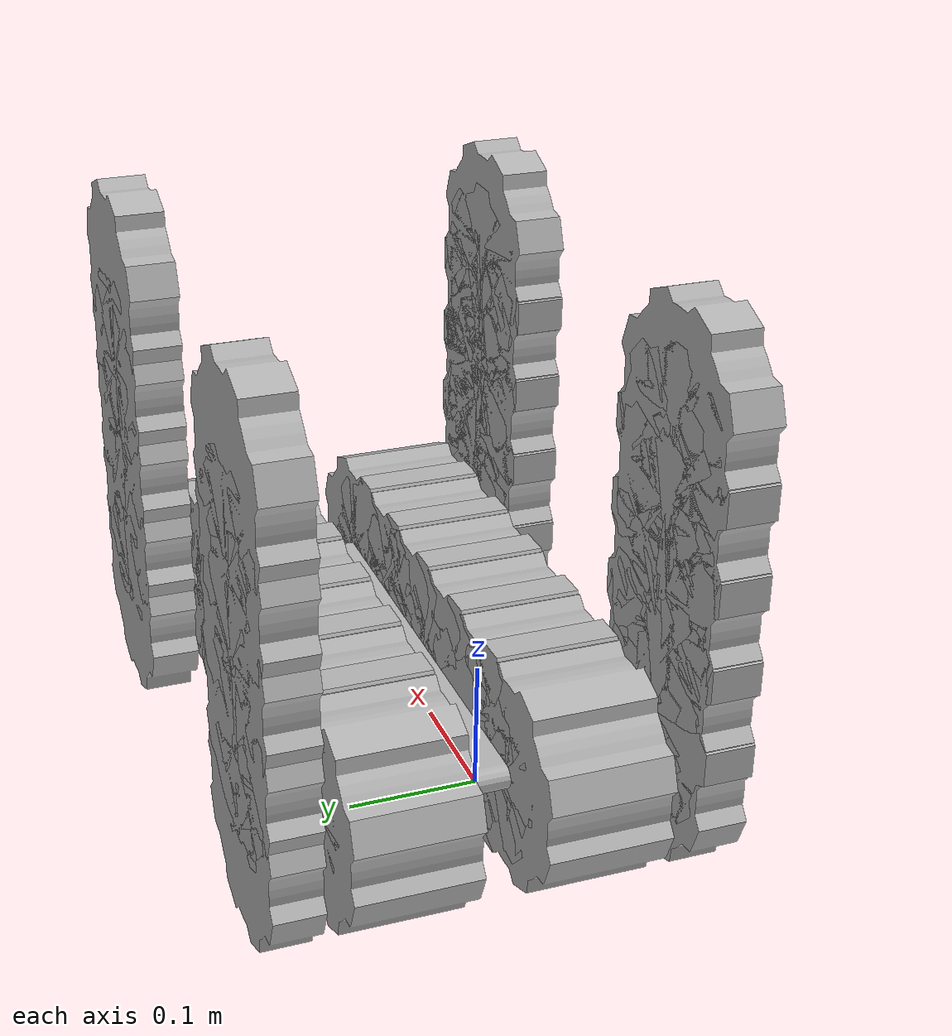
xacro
<?xml version="1.0" ?>
<robot name="easy_j1" xmlns:xacro="http://www.ros.org/wiki/xacro">

<xacro:include filename="$(find easy_j1_description)/urdf/materials.xacro" />
<xacro:include filename="$(find easy_j1_description)/urdf/easy_j1.trans" />
<xacro:include filename="$(find easy_j1_description)/urdf/easy_j1.gazebo" />
<link name="base_link">
  <inertial>
    <origin xyz="0.18824000000000002 8.395296854792174e-17 4.197648427396087e-18" rpy="0 0 0"/>
    <mass value="1.0833383470577025"/>
    <inertia ixx="0.004576" iyy="0.014873" izz="0.019388" ixy="0.0" iyz="0.0" ixz="0.0"/>
  </inertial>
  <visual>
    <origin xyz="0 0 0" rpy="0 0 0"/>
    <geometry>
      <mesh filename="package://easy_j1_description/meshes/base_link.stl" scale="0.001 0.001 0.001"/>
    </geometry>
    <material name="silver"/>
  </visual>
  <collision>
    <origin xyz="0 0 0" rpy="0 0 0"/>
    <geometry>
      <mesh filename="package://easy_j1_description/meshes/base_link.stl" scale="0.001 0.001 0.001"/>
    </geometry>
  </collision>
</link>

<link name="gear_ou_1">
  <inertial>
    <origin xyz="1.911870673115013e-06 0.04999999999999999 -1.711881432260235e-05" rpy="0 0 0"/>
    <mass value="2.261142306483083"/>
    <inertia ixx="0.006104" iyy="0.008446" izz="0.006111" ixy="0.0" iyz="-0.0" ixz="-4e-06"/>
  </inertial>
  <visual>
    <origin xyz="-0.0 0.125 -0.0" rpy="0 0 0"/>
    <geometry>
      <mesh filename="package://easy_j1_description/meshes/gear_ou_1.stl" scale="0.001 0.001 0.001"/>
    </geometry>
    <material name="silver"/>
  </visual>
  <collision>
    <origin xyz="-0.0 0.125 -0.0" rpy="0 0 0"/>
    <geometry>
      <mesh filename="package://easy_j1_description/meshes/gear_ou_1.stl" scale="0.001 0.001 0.001"/>
    </geometry>
  </collision>
</link>

<link name="gear_ou_2">
  <inertial>
    <origin xyz="1.9118706731241497e-06 0.04999999999999999 -1.711881432260235e-05" rpy="0 0 0"/>
    <mass value="2.261142306483083"/>
    <inertia ixx="0.006104" iyy="0.008446" izz="0.006111" ixy="0.0" iyz="-0.0" ixz="-4e-06"/>
  </inertial>
  <visual>
    <origin xyz="-0.075296 0.125 -0.0" rpy="0 0 0"/>
    <geometry>
      <mesh filename="package://easy_j1_description/meshes/gear_ou_2.stl" scale="0.001 0.001 0.001"/>
    </geometry>
    <material name="silver"/>
  </visual>
  <collision>
    <origin xyz="-0.075296 0.125 -0.0" rpy="0 0 0"/>
    <geometry>
      <mesh filename="package://easy_j1_description/meshes/gear_ou_2.stl" scale="0.001 0.001 0.001"/>
    </geometry>
  </collision>
</link>

<link name="gear_ou_3">
  <inertial>
    <origin xyz="1.9118706731380275e-06 0.04999999999999999 -1.711881432260235e-05" rpy="0 0 0"/>
    <mass value="2.261142306483083"/>
    <inertia ixx="0.006104" iyy="0.008446" izz="0.006111" ixy="0.0" iyz="-0.0" ixz="-4e-06"/>
  </inertial>
  <visual>
    <origin xyz="-0.150592 0.125 -0.0" rpy="0 0 0"/>
    <geometry>
      <mesh filename="package://easy_j1_description/meshes/gear_ou_3.stl" scale="0.001 0.001 0.001"/>
    </geometry>
    <material name="silver"/>
  </visual>
  <collision>
    <origin xyz="-0.150592 0.125 -0.0" rpy="0 0 0"/>
    <geometry>
      <mesh filename="package://easy_j1_description/meshes/gear_ou_3.stl" scale="0.001 0.001 0.001"/>
    </geometry>
  </collision>
</link>

<link name="gear_ou_5">
  <inertial>
    <origin xyz="1.9118706731380275e-06 0.04999999999999999 -1.711881432260235e-05" rpy="0 0 0"/>
    <mass value="2.261142306483083"/>
    <inertia ixx="0.006104" iyy="0.008446" izz="0.006111" ixy="-0.0" iyz="-0.0" ixz="-4e-06"/>
  </inertial>
  <visual>
    <origin xyz="-0.225888 0.125 -0.0" rpy="0 0 0"/>
    <geometry>
      <mesh filename="package://easy_j1_description/meshes/gear_ou_5.stl" scale="0.001 0.001 0.001"/>
    </geometry>
    <material name="silver"/>
  </visual>
  <collision>
    <origin xyz="-0.225888 0.125 -0.0" rpy="0 0 0"/>
    <geometry>
      <mesh filename="package://easy_j1_description/meshes/gear_ou_5.stl" scale="0.001 0.001 0.001"/>
    </geometry>
  </collision>
</link>

<link name="gear_ou_4">
  <inertial>
    <origin xyz="1.9118706732212942e-06 0.04999999999999999 -1.711881432260235e-05" rpy="0 0 0"/>
    <mass value="2.261142306483083"/>
    <inertia ixx="0.006104" iyy="0.008446" izz="0.006111" ixy="-0.0" iyz="-0.0" ixz="-4e-06"/>
  </inertial>
  <visual>
    <origin xyz="-0.301184 0.125 -0.0" rpy="0 0 0"/>
    <geometry>
      <mesh filename="package://easy_j1_description/meshes/gear_ou_4.stl" scale="0.001 0.001 0.001"/>
    </geometry>
    <material name="silver"/>
  </visual>
  <collision>
    <origin xyz="-0.301184 0.125 -0.0" rpy="0 0 0"/>
    <geometry>
      <mesh filename="package://easy_j1_description/meshes/gear_ou_4.stl" scale="0.001 0.001 0.001"/>
    </geometry>
  </collision>
</link>

<link name="gear_ou_6">
  <inertial>
    <origin xyz="1.911870673110272e-06 0.04999999999999999 -1.7118814322600126e-05" rpy="0 0 0"/>
    <mass value="2.261142306483083"/>
    <inertia ixx="0.006104" iyy="0.008446" izz="0.006111" ixy="0.0" iyz="-0.0" ixz="-4e-06"/>
  </inertial>
  <visual>
    <origin xyz="-0.37648 0.125 -0.0" rpy="0 0 0"/>
    <geometry>
      <mesh filename="package://easy_j1_description/meshes/gear_ou_6.stl" scale="0.001 0.001 0.001"/>
    </geometry>
    <material name="silver"/>
  </visual>
  <collision>
    <origin xyz="-0.37648 0.125 -0.0" rpy="0 0 0"/>
    <geometry>
      <mesh filename="package://easy_j1_description/meshes/gear_ou_6.stl" scale="0.001 0.001 0.001"/>
    </geometry>
  </collision>
</link>

<link name="gear_totu_1">
  <inertial>
    <origin xyz="8.025821132975897e-06 0.05 -1.524123513452956e-05" rpy="0 0 0"/>
    <mass value="2.261142306483082"/>
    <inertia ixx="0.006107" iyy="0.008446" izz="0.006107" ixy="0.0" iyz="0.0" ixz="-5e-06"/>
  </inertial>
  <visual>
    <origin xyz="-0.037648 0.125 -0.0" rpy="0 0 0"/>
    <geometry>
      <mesh filename="package://easy_j1_description/meshes/gear_totu_1.stl" scale="0.001 0.001 0.001"/>
    </geometry>
    <material name="silver"/>
  </visual>
  <collision>
    <origin xyz="-0.037648 0.125 -0.0" rpy="0 0 0"/>
    <geometry>
      <mesh filename="package://easy_j1_description/meshes/gear_totu_1.stl" scale="0.001 0.001 0.001"/>
    </geometry>
  </collision>
</link>

<link name="gear_totu_2">
  <inertial>
    <origin xyz="8.025821132975897e-06 0.05 -1.524123513452956e-05" rpy="0 0 0"/>
    <mass value="2.261142306483082"/>
    <inertia ixx="0.006107" iyy="0.008446" izz="0.006107" ixy="0.0" iyz="0.0" ixz="-5e-06"/>
  </inertial>
  <visual>
    <origin xyz="-0.112944 0.125 -0.0" rpy="0 0 0"/>
    <geometry>
      <mesh filename="package://easy_j1_description/meshes/gear_totu_2.stl" scale="0.001 0.001 0.001"/>
    </geometry>
    <material name="silver"/>
  </visual>
  <collision>
    <origin xyz="-0.112944 0.125 -0.0" rpy="0 0 0"/>
    <geometry>
      <mesh filename="package://easy_j1_description/meshes/gear_totu_2.stl" scale="0.001 0.001 0.001"/>
    </geometry>
  </collision>
</link>

<link name="gear_totu_4">
  <inertial>
    <origin xyz="8.025821132962019e-06 0.05 -1.524123513452956e-05" rpy="0 0 0"/>
    <mass value="2.261142306483082"/>
    <inertia ixx="0.006107" iyy="0.008446" izz="0.006107" ixy="-0.0" iyz="0.0" ixz="-5e-06"/>
  </inertial>
  <visual>
    <origin xyz="-0.18824 0.125 -0.0" rpy="0 0 0"/>
    <geometry>
      <mesh filename="package://easy_j1_description/meshes/gear_totu_4.stl" scale="0.001 0.001 0.001"/>
    </geometry>
    <material name="silver"/>
  </visual>
  <collision>
    <origin xyz="-0.18824 0.125 -0.0" rpy="0 0 0"/>
    <geometry>
      <mesh filename="package://easy_j1_description/meshes/gear_totu_4.stl" scale="0.001 0.001 0.001"/>
    </geometry>
  </collision>
</link>

<link name="gear_totu_5">
  <inertial>
    <origin xyz="8.02582113301753e-06 0.05 -1.524123513452956e-05" rpy="0 0 0"/>
    <mass value="2.261142306483082"/>
    <inertia ixx="0.006107" iyy="0.008446" izz="0.006107" ixy="-0.0" iyz="0.0" ixz="-5e-06"/>
  </inertial>
  <visual>
    <origin xyz="-0.263536 0.125 -0.0" rpy="0 0 0"/>
    <geometry>
      <mesh filename="package://easy_j1_description/meshes/gear_totu_5.stl" scale="0.001 0.001 0.001"/>
    </geometry>
    <material name="silver"/>
  </visual>
  <collision>
    <origin xyz="-0.263536 0.125 -0.0" rpy="0 0 0"/>
    <geometry>
      <mesh filename="package://easy_j1_description/meshes/gear_totu_5.stl" scale="0.001 0.001 0.001"/>
    </geometry>
  </collision>
</link>

<link name="gear_totu_3">
  <inertial>
    <origin xyz="8.02582113301753e-06 0.05 -1.524123513452956e-05" rpy="0 0 0"/>
    <mass value="2.261142306483082"/>
    <inertia ixx="0.006107" iyy="0.008446" izz="0.006107" ixy="-0.0" iyz="0.0" ixz="-5e-06"/>
  </inertial>
  <visual>
    <origin xyz="-0.338832 0.125 -0.0" rpy="0 0 0"/>
    <geometry>
      <mesh filename="package://easy_j1_description/meshes/gear_totu_3.stl" scale="0.001 0.001 0.001"/>
    </geometry>
    <material name="silver"/>
  </visual>
  <collision>
    <origin xyz="-0.338832 0.125 -0.0" rpy="0 0 0"/>
    <geometry>
      <mesh filename="package://easy_j1_description/meshes/gear_totu_3.stl" scale="0.001 0.001 0.001"/>
    </geometry>
  </collision>
</link>

<link name="cgear_ou_1">
  <inertial>
    <origin xyz="1.9118706728093203e-06 -0.04999999999999999 -1.711881432260096e-05" rpy="0 0 0"/>
    <mass value="2.261142306483083"/>
    <inertia ixx="0.006104" iyy="0.008446" izz="0.006111" ixy="0.0" iyz="-0.0" ixz="-4e-06"/>
  </inertial>
  <visual>
    <origin xyz="-0.0 -0.125 -0.0" rpy="0 0 0"/>
    <geometry>
      <mesh filename="package://easy_j1_description/meshes/cgear_ou_1.stl" scale="0.001 0.001 0.001"/>
    </geometry>
    <material name="silver"/>
  </visual>
  <collision>
    <origin xyz="-0.0 -0.125 -0.0" rpy="0 0 0"/>
    <geometry>
      <mesh filename="package://easy_j1_description/meshes/cgear_ou_1.stl" scale="0.001 0.001 0.001"/>
    </geometry>
  </collision>
</link>

<link name="cgear_ou_2">
  <inertial>
    <origin xyz="1.9118706728188384e-06 -0.04999999999999999 -1.711881432260096e-05" rpy="0 0 0"/>
    <mass value="2.261142306483083"/>
    <inertia ixx="0.006104" iyy="0.008446" izz="0.006111" ixy="0.0" iyz="-0.0" ixz="-4e-06"/>
  </inertial>
  <visual>
    <origin xyz="-0.075296 -0.125 -0.0" rpy="0 0 0"/>
    <geometry>
      <mesh filename="package://easy_j1_description/meshes/cgear_ou_2.stl" scale="0.001 0.001 0.001"/>
    </geometry>
    <material name="silver"/>
  </visual>
  <collision>
    <origin xyz="-0.075296 -0.125 -0.0" rpy="0 0 0"/>
    <geometry>
      <mesh filename="package://easy_j1_description/meshes/cgear_ou_2.stl" scale="0.001 0.001 0.001"/>
    </geometry>
  </collision>
</link>

<link name="cgear_ou_3">
  <inertial>
    <origin xyz="1.911870672832716e-06 -0.04999999999999999 -1.711881432259874e-05" rpy="0 0 0"/>
    <mass value="2.261142306483083"/>
    <inertia ixx="0.006104" iyy="0.008446" izz="0.006111" ixy="0.0" iyz="-0.0" ixz="-4e-06"/>
  </inertial>
  <visual>
    <origin xyz="-0.37648 -0.125 -0.0" rpy="0 0 0"/>
    <geometry>
      <mesh filename="package://easy_j1_description/meshes/cgear_ou_3.stl" scale="0.001 0.001 0.001"/>
    </geometry>
    <material name="silver"/>
  </visual>
  <collision>
    <origin xyz="-0.37648 -0.125 -0.0" rpy="0 0 0"/>
    <geometry>
      <mesh filename="package://easy_j1_description/meshes/cgear_ou_3.stl" scale="0.001 0.001 0.001"/>
    </geometry>
  </collision>
</link>

<link name="cgear_ou_4">
  <inertial>
    <origin xyz="1.911870672777205e-06 -0.04999999999999999 -1.711881432260096e-05" rpy="0 0 0"/>
    <mass value="2.261142306483083"/>
    <inertia ixx="0.006104" iyy="0.008446" izz="0.006111" ixy="0.0" iyz="-0.0" ixz="-4e-06"/>
  </inertial>
  <visual>
    <origin xyz="-0.301184 -0.125 -0.0" rpy="0 0 0"/>
    <geometry>
      <mesh filename="package://easy_j1_description/meshes/cgear_ou_4.stl" scale="0.001 0.001 0.001"/>
    </geometry>
    <material name="silver"/>
  </visual>
  <collision>
    <origin xyz="-0.301184 -0.125 -0.0" rpy="0 0 0"/>
    <geometry>
      <mesh filename="package://easy_j1_description/meshes/cgear_ou_4.stl" scale="0.001 0.001 0.001"/>
    </geometry>
  </collision>
</link>

<link name="cgear_ou_5">
  <inertial>
    <origin xyz="1.911870672832716e-06 -0.04999999999999999 -1.711881432260096e-05" rpy="0 0 0"/>
    <mass value="2.261142306483083"/>
    <inertia ixx="0.006104" iyy="0.008446" izz="0.006111" ixy="0.0" iyz="-0.0" ixz="-4e-06"/>
  </inertial>
  <visual>
    <origin xyz="-0.225888 -0.125 -0.0" rpy="0 0 0"/>
    <geometry>
      <mesh filename="package://easy_j1_description/meshes/cgear_ou_5.stl" scale="0.001 0.001 0.001"/>
    </geometry>
    <material name="silver"/>
  </visual>
  <collision>
    <origin xyz="-0.225888 -0.125 -0.0" rpy="0 0 0"/>
    <geometry>
      <mesh filename="package://easy_j1_description/meshes/cgear_ou_5.stl" scale="0.001 0.001 0.001"/>
    </geometry>
  </collision>
</link>

<link name="cgear_ou_6">
  <inertial>
    <origin xyz="1.911870672832716e-06 -0.04999999999999999 -1.711881432260096e-05" rpy="0 0 0"/>
    <mass value="2.261142306483083"/>
    <inertia ixx="0.006104" iyy="0.008446" izz="0.006111" ixy="0.0" iyz="-0.0" ixz="-4e-06"/>
  </inertial>
  <visual>
    <origin xyz="-0.150592 -0.125 -0.0" rpy="0 0 0"/>
    <geometry>
      <mesh filename="package://easy_j1_description/meshes/cgear_ou_6.stl" scale="0.001 0.001 0.001"/>
    </geometry>
    <material name="silver"/>
  </visual>
  <collision>
    <origin xyz="-0.150592 -0.125 -0.0" rpy="0 0 0"/>
    <geometry>
      <mesh filename="package://easy_j1_description/meshes/cgear_ou_6.stl" scale="0.001 0.001 0.001"/>
    </geometry>
  </collision>
</link>

<link name="cgear_totu_1">
  <inertial>
    <origin xyz="8.025821132587319e-06 -0.05 -1.5241235134527131e-05" rpy="0 0 0"/>
    <mass value="2.2611423064830816"/>
    <inertia ixx="0.006107" iyy="0.008446" izz="0.006107" ixy="0.0" iyz="-0.0" ixz="-5e-06"/>
  </inertial>
  <visual>
    <origin xyz="-0.037648 -0.125 -0.0" rpy="0 0 0"/>
    <geometry>
      <mesh filename="package://easy_j1_description/meshes/cgear_totu_1.stl" scale="0.001 0.001 0.001"/>
    </geometry>
    <material name="silver"/>
  </visual>
  <collision>
    <origin xyz="-0.037648 -0.125 -0.0" rpy="0 0 0"/>
    <geometry>
      <mesh filename="package://easy_j1_description/meshes/cgear_totu_1.stl" scale="0.001 0.001 0.001"/>
    </geometry>
  </collision>
</link>

<link name="cgear_totu_2">
  <inertial>
    <origin xyz="8.025821132587319e-06 -0.04999999999999974 -1.5241235134527114e-05" rpy="0 0 0"/>
    <mass value="2.2611423064830816"/>
    <inertia ixx="0.006107" iyy="0.008446" izz="0.006107" ixy="0.0" iyz="-0.0" ixz="-5e-06"/>
  </inertial>
  <visual>
    <origin xyz="-0.112944 -0.125 -0.0" rpy="0 0 0"/>
    <geometry>
      <mesh filename="package://easy_j1_description/meshes/cgear_totu_2.stl" scale="0.001 0.001 0.001"/>
    </geometry>
    <material name="silver"/>
  </visual>
  <collision>
    <origin xyz="-0.112944 -0.125 -0.0" rpy="0 0 0"/>
    <geometry>
      <mesh filename="package://easy_j1_description/meshes/cgear_totu_2.stl" scale="0.001 0.001 0.001"/>
    </geometry>
  </collision>
</link>

<link name="cgear_totu_3">
  <inertial>
    <origin xyz="8.02582113257344e-06 -0.04999999999999996 -1.5241235134527131e-05" rpy="0 0 0"/>
    <mass value="2.2611423064830816"/>
    <inertia ixx="0.006107" iyy="0.008446" izz="0.006107" ixy="0.0" iyz="-0.0" ixz="-5e-06"/>
  </inertial>
  <visual>
    <origin xyz="-0.18824 -0.125 -0.0" rpy="0 0 0"/>
    <geometry>
      <mesh filename="package://easy_j1_description/meshes/cgear_totu_3.stl" scale="0.001 0.001 0.001"/>
    </geometry>
    <material name="silver"/>
  </visual>
  <collision>
    <origin xyz="-0.18824 -0.125 -0.0" rpy="0 0 0"/>
    <geometry>
      <mesh filename="package://easy_j1_description/meshes/cgear_totu_3.stl" scale="0.001 0.001 0.001"/>
    </geometry>
  </collision>
</link>

<link name="cgear_totu_4">
  <inertial>
    <origin xyz="8.02582113257344e-06 -0.04999999999999996 -1.5241235134527131e-05" rpy="0 0 0"/>
    <mass value="2.2611423064830816"/>
    <inertia ixx="0.006107" iyy="0.008446" izz="0.006107" ixy="0.0" iyz="-0.0" ixz="-5e-06"/>
  </inertial>
  <visual>
    <origin xyz="-0.263536 -0.125 -0.0" rpy="0 0 0"/>
    <geometry>
      <mesh filename="package://easy_j1_description/meshes/cgear_totu_4.stl" scale="0.001 0.001 0.001"/>
    </geometry>
    <material name="silver"/>
  </visual>
  <collision>
    <origin xyz="-0.263536 -0.125 -0.0" rpy="0 0 0"/>
    <geometry>
      <mesh filename="package://easy_j1_description/meshes/cgear_totu_4.stl" scale="0.001 0.001 0.001"/>
    </geometry>
  </collision>
</link>

<link name="cgear_totu_5">
  <inertial>
    <origin xyz="8.02582113257344e-06 -0.04999999999999996 -1.5241235134527131e-05" rpy="0 0 0"/>
    <mass value="2.2611423064830816"/>
    <inertia ixx="0.006107" iyy="0.008446" izz="0.006107" ixy="-0.0" iyz="-0.0" ixz="-5e-06"/>
  </inertial>
  <visual>
    <origin xyz="-0.338832 -0.125 -0.0" rpy="0 0 0"/>
    <geometry>
      <mesh filename="package://easy_j1_description/meshes/cgear_totu_5.stl" scale="0.001 0.001 0.001"/>
    </geometry>
    <material name="silver"/>
  </visual>
  <collision>
    <origin xyz="-0.338832 -0.125 -0.0" rpy="0 0 0"/>
    <geometry>
      <mesh filename="package://easy_j1_description/meshes/cgear_totu_5.stl" scale="0.001 0.001 0.001"/>
    </geometry>
  </collision>
</link>

<link name="rl_2">
  <inertial>
    <origin xyz="-8.282263763703668e-14 -0.039094849608622556 0.13820053564095713" rpy="0 0 0"/>
    <mass value="0.052061944901923785"/>
    <inertia ixx="0.000425" iyy="0.00042" izz="6e-06" ixy="-0.0" iyz="7e-06" ixz="0.0"/>
  </inertial>
  <visual>
    <origin xyz="-0.37648 0.125 -0.0" rpy="0 0 0"/>
    <geometry>
      <mesh filename="package://easy_j1_description/meshes/rl_2.stl" scale="0.001 0.001 0.001"/>
    </geometry>
    <material name="silver"/>
  </visual>
  <collision>
    <origin xyz="-0.37648 0.125 -0.0" rpy="0 0 0"/>
    <geometry>
      <mesh filename="package://easy_j1_description/meshes/rl_2.stl" scale="0.001 0.001 0.001"/>
    </geometry>
  </collision>
</link>

<link name="rl_1">
  <inertial>
    <origin xyz="-8.281962889398128e-14 -0.039094849608622556 0.1382005356409572" rpy="0 0 0"/>
    <mass value="0.052061944901923785"/>
    <inertia ixx="0.000425" iyy="0.00042" izz="6e-06" ixy="-0.0" iyz="7e-06" ixz="0.0"/>
  </inertial>
  <visual>
    <origin xyz="-0.0 0.125 -0.0" rpy="0 0 0"/>
    <geometry>
      <mesh filename="package://easy_j1_description/meshes/rl_1.stl" scale="0.001 0.001 0.001"/>
    </geometry>
    <material name="silver"/>
  </visual>
  <collision>
    <origin xyz="-0.0 0.125 -0.0" rpy="0 0 0"/>
    <geometry>
      <mesh filename="package://easy_j1_description/meshes/rl_1.stl" scale="0.001 0.001 0.001"/>
    </geometry>
  </collision>
</link>

<link name="rl_4">
  <inertial>
    <origin xyz="8.582742061152131e-14 0.039094849608622556 0.13820053564095708" rpy="0 0 0"/>
    <mass value="0.052061944901923785"/>
    <inertia ixx="0.000425" iyy="0.00042" izz="6e-06" ixy="-0.0" iyz="-7e-06" ixz="-0.0"/>
  </inertial>
  <visual>
    <origin xyz="-0.0 -0.125 -0.0" rpy="0 0 0"/>
    <geometry>
      <mesh filename="package://easy_j1_description/meshes/rl_4.stl" scale="0.001 0.001 0.001"/>
    </geometry>
    <material name="silver"/>
  </visual>
  <collision>
    <origin xyz="-0.0 -0.125 -0.0" rpy="0 0 0"/>
    <geometry>
      <mesh filename="package://easy_j1_description/meshes/rl_4.stl" scale="0.001 0.001 0.001"/>
    </geometry>
  </collision>
</link>

<link name="rl_3">
  <inertial>
    <origin xyz="8.609779555968089e-14 0.03909484960862261 0.13820053564095713" rpy="0 0 0"/>
    <mass value="0.052061944901923785"/>
    <inertia ixx="0.000425" iyy="0.00042" izz="6e-06" ixy="-0.0" iyz="-7e-06" ixz="-0.0"/>
  </inertial>
  <visual>
    <origin xyz="-0.37648 -0.125 -0.0" rpy="0 0 0"/>
    <geometry>
      <mesh filename="package://easy_j1_description/meshes/rl_3.stl" scale="0.001 0.001 0.001"/>
    </geometry>
    <material name="silver"/>
  </visual>
  <collision>
    <origin xyz="-0.37648 -0.125 -0.0" rpy="0 0 0"/>
    <geometry>
      <mesh filename="package://easy_j1_description/meshes/rl_3.stl" scale="0.001 0.001 0.001"/>
    </geometry>
  </collision>
</link>

<link name="gear_flat_f_1">
  <inertial>
    <origin xyz="1.946496241067748e-06 -0.020000000000000046 -1.7114911697742212e-05" rpy="0 0 0"/>
    <mass value="0.9044569225918019"/>
    <inertia ixx="0.001809" iyy="0.003379" izz="0.001811" ixy="-0.0" iyz="0.0" ixz="-1e-06"/>
  </inertial>
  <visual>
    <origin xyz="-0.0 -0.185 0.0" rpy="0 0 0"/>
    <geometry>
      <mesh filename="package://easy_j1_description/meshes/gear_flat_f_1.stl" scale="0.001 0.001 0.001"/>
    </geometry>
    <material name="silver"/>
  </visual>
  <collision>
    <origin xyz="-0.0 -0.185 0.0" rpy="0 0 0"/>
    <geometry>
      <mesh filename="package://easy_j1_description/meshes/gear_flat_f_1.stl" scale="0.001 0.001 0.001"/>
    </geometry>
  </collision>
</link>

<link name="gear_flat_f_2">
  <inertial>
    <origin xyz="1.946496241064053e-06 -0.020000000000000046 -1.711491169778534e-05" rpy="0 0 0"/>
    <mass value="0.9044569225918019"/>
    <inertia ixx="0.001809" iyy="0.003379" izz="0.001811" ixy="-0.0" iyz="0.0" ixz="-1e-06"/>
  </inertial>
  <visual>
    <origin xyz="-0.0 -0.185 -0.07125" rpy="0 0 0"/>
    <geometry>
      <mesh filename="package://easy_j1_description/meshes/gear_flat_f_2.stl" scale="0.001 0.001 0.001"/>
    </geometry>
    <material name="silver"/>
  </visual>
  <collision>
    <origin xyz="-0.0 -0.185 -0.07125" rpy="0 0 0"/>
    <geometry>
      <mesh filename="package://easy_j1_description/meshes/gear_flat_f_2.stl" scale="0.001 0.001 0.001"/>
    </geometry>
  </collision>
</link>

<link name="gear_flat_f_3">
  <inertial>
    <origin xyz="1.946496241028526e-06 -0.020000000000000046 -1.711491169784085e-05" rpy="0 0 0"/>
    <mass value="0.9044569225918019"/>
    <inertia ixx="0.001809" iyy="0.003379" izz="0.001811" ixy="-0.0" iyz="0.0" ixz="-1e-06"/>
  </inertial>
  <visual>
    <origin xyz="-0.0 -0.185 -0.1425" rpy="0 0 0"/>
    <geometry>
      <mesh filename="package://easy_j1_description/meshes/gear_flat_f_3.stl" scale="0.001 0.001 0.001"/>
    </geometry>
    <material name="silver"/>
  </visual>
  <collision>
    <origin xyz="-0.0 -0.185 -0.1425" rpy="0 0 0"/>
    <geometry>
      <mesh filename="package://easy_j1_description/meshes/gear_flat_f_3.stl" scale="0.001 0.001 0.001"/>
    </geometry>
  </collision>
</link>

<link name="gear_flat_f_6">
  <inertial>
    <origin xyz="1.9464962410374077e-06 -0.020000000000000046 -1.7114911697924118e-05" rpy="0 0 0"/>
    <mass value="0.9044569225918019"/>
    <inertia ixx="0.001809" iyy="0.003379" izz="0.001811" ixy="-0.0" iyz="0.0" ixz="-1e-06"/>
  </inertial>
  <visual>
    <origin xyz="-0.0 -0.185 -0.21375" rpy="0 0 0"/>
    <geometry>
      <mesh filename="package://easy_j1_description/meshes/gear_flat_f_6.stl" scale="0.001 0.001 0.001"/>
    </geometry>
    <material name="silver"/>
  </visual>
  <collision>
    <origin xyz="-0.0 -0.185 -0.21375" rpy="0 0 0"/>
    <geometry>
      <mesh filename="package://easy_j1_description/meshes/gear_flat_f_6.stl" scale="0.001 0.001 0.001"/>
    </geometry>
  </collision>
</link>

<link name="gear_flat_f_7">
  <inertial>
    <origin xyz="1.9464962410328976e-06 -0.020000000000000046 -1.711491169797963e-05" rpy="0 0 0"/>
    <mass value="0.9044569225918019"/>
    <inertia ixx="0.001809" iyy="0.003379" izz="0.001811" ixy="-0.0" iyz="0.0" ixz="-1e-06"/>
  </inertial>
  <visual>
    <origin xyz="-0.0 -0.185 -0.285" rpy="0 0 0"/>
    <geometry>
      <mesh filename="package://easy_j1_description/meshes/gear_flat_f_7.stl" scale="0.001 0.001 0.001"/>
    </geometry>
    <material name="silver"/>
  </visual>
  <collision>
    <origin xyz="-0.0 -0.185 -0.285" rpy="0 0 0"/>
    <geometry>
      <mesh filename="package://easy_j1_description/meshes/gear_flat_f_7.stl" scale="0.001 0.001 0.001"/>
    </geometry>
  </collision>
</link>

<link name="gear_flat_f_11">
  <inertial>
    <origin xyz="1.9464962416337883e-06 -0.01999999999999988 -1.711491169773998e-05" rpy="0 0 0"/>
    <mass value="0.9044569225918019"/>
    <inertia ixx="0.001809" iyy="0.003379" izz="0.001811" ixy="0.0" iyz="0.0" ixz="-1e-06"/>
  </inertial>
  <visual>
    <origin xyz="-0.37648 -0.185 -0.0" rpy="0 0 0"/>
    <geometry>
      <mesh filename="package://easy_j1_description/meshes/gear_flat_f_11.stl" scale="0.001 0.001 0.001"/>
    </geometry>
    <material name="silver"/>
  </visual>
  <collision>
    <origin xyz="-0.37648 -0.185 -0.0" rpy="0 0 0"/>
    <geometry>
      <mesh filename="package://easy_j1_description/meshes/gear_flat_f_11.stl" scale="0.001 0.001 0.001"/>
    </geometry>
  </collision>
</link>

<link name="gear_flat_f_10">
  <inertial>
    <origin xyz="1.9464962416337883e-06 -0.01999999999999988 -1.7114911697771462e-05" rpy="0 0 0"/>
    <mass value="0.9044569225918019"/>
    <inertia ixx="0.001809" iyy="0.003379" izz="0.001811" ixy="0.0" iyz="0.0" ixz="-1e-06"/>
  </inertial>
  <visual>
    <origin xyz="-0.37648 -0.185 -0.07125" rpy="0 0 0"/>
    <geometry>
      <mesh filename="package://easy_j1_description/meshes/gear_flat_f_10.stl" scale="0.001 0.001 0.001"/>
    </geometry>
    <material name="silver"/>
  </visual>
  <collision>
    <origin xyz="-0.37648 -0.185 -0.07125" rpy="0 0 0"/>
    <geometry>
      <mesh filename="package://easy_j1_description/meshes/gear_flat_f_10.stl" scale="0.001 0.001 0.001"/>
    </geometry>
  </collision>
</link>

<link name="gear_flat_f_9">
  <inertial>
    <origin xyz="1.9464962416337883e-06 -0.01999999999999988 -1.711491169784085e-05" rpy="0 0 0"/>
    <mass value="0.9044569225918019"/>
    <inertia ixx="0.001809" iyy="0.003379" izz="0.001811" ixy="0.0" iyz="0.0" ixz="-1e-06"/>
  </inertial>
  <visual>
    <origin xyz="-0.37648 -0.185 -0.1425" rpy="0 0 0"/>
    <geometry>
      <mesh filename="package://easy_j1_description/meshes/gear_flat_f_9.stl" scale="0.001 0.001 0.001"/>
    </geometry>
    <material name="silver"/>
  </visual>
  <collision>
    <origin xyz="-0.37648 -0.185 -0.1425" rpy="0 0 0"/>
    <geometry>
      <mesh filename="package://easy_j1_description/meshes/gear_flat_f_9.stl" scale="0.001 0.001 0.001"/>
    </geometry>
  </collision>
</link>

<link name="gear_flat_f_8">
  <inertial>
    <origin xyz="1.9464962414117437e-06 -0.01999999999999988 -1.7114911697868607e-05" rpy="0 0 0"/>
    <mass value="0.9044569225918019"/>
    <inertia ixx="0.001809" iyy="0.003379" izz="0.001811" ixy="0.0" iyz="0.0" ixz="-1e-06"/>
  </inertial>
  <visual>
    <origin xyz="-0.37648 -0.185 -0.21375" rpy="0 0 0"/>
    <geometry>
      <mesh filename="package://easy_j1_description/meshes/gear_flat_f_8.stl" scale="0.001 0.001 0.001"/>
    </geometry>
    <material name="silver"/>
  </visual>
  <collision>
    <origin xyz="-0.37648 -0.185 -0.21375" rpy="0 0 0"/>
    <geometry>
      <mesh filename="package://easy_j1_description/meshes/gear_flat_f_8.stl" scale="0.001 0.001 0.001"/>
    </geometry>
  </collision>
</link>

<link name="gear_flat_f_5">
  <inertial>
    <origin xyz="1.946496241189699e-06 -0.01999999999999988 -1.7114911697868607e-05" rpy="0 0 0"/>
    <mass value="0.9044569225918019"/>
    <inertia ixx="0.001809" iyy="0.003379" izz="0.001811" ixy="0.0" iyz="0.0" ixz="-1e-06"/>
  </inertial>
  <visual>
    <origin xyz="-0.37648 -0.185 -0.285" rpy="0 0 0"/>
    <geometry>
      <mesh filename="package://easy_j1_description/meshes/gear_flat_f_5.stl" scale="0.001 0.001 0.001"/>
    </geometry>
    <material name="silver"/>
  </visual>
  <collision>
    <origin xyz="-0.37648 -0.185 -0.285" rpy="0 0 0"/>
    <geometry>
      <mesh filename="package://easy_j1_description/meshes/gear_flat_f_5.stl" scale="0.001 0.001 0.001"/>
    </geometry>
  </collision>
</link>

<link name="gear_flat_f_19">
  <inertial>
    <origin xyz="-1.9464962368022713e-06 0.01999999999999999 -1.711491169774221e-05" rpy="0 0 0"/>
    <mass value="0.9044569225918019"/>
    <inertia ixx="0.001809" iyy="0.003379" izz="0.001811" ixy="-0.0" iyz="-0.0" ixz="1e-06"/>
  </inertial>
  <visual>
    <origin xyz="-0.0 0.185 -0.0" rpy="0 0 0"/>
    <geometry>
      <mesh filename="package://easy_j1_description/meshes/gear_flat_f_19.stl" scale="0.001 0.001 0.001"/>
    </geometry>
    <material name="silver"/>
  </visual>
  <collision>
    <origin xyz="-0.0 0.185 -0.0" rpy="0 0 0"/>
    <geometry>
      <mesh filename="package://easy_j1_description/meshes/gear_flat_f_19.stl" scale="0.001 0.001 0.001"/>
    </geometry>
  </collision>
</link>

<link name="gear_flat_f_18">
  <inertial>
    <origin xyz="-1.946496236805359e-06 0.019999999999999934 -1.711491169772983e-05" rpy="0 0 0"/>
    <mass value="0.9044569225918019"/>
    <inertia ixx="0.001809" iyy="0.003379" izz="0.001811" ixy="-0.0" iyz="0.0" ixz="1e-06"/>
  </inertial>
  <visual>
    <origin xyz="0.0 0.185 -0.07125" rpy="0 0 0"/>
    <geometry>
      <mesh filename="package://easy_j1_description/meshes/gear_flat_f_18.stl" scale="0.001 0.001 0.001"/>
    </geometry>
    <material name="silver"/>
  </visual>
  <collision>
    <origin xyz="0.0 0.185 -0.07125" rpy="0 0 0"/>
    <geometry>
      <mesh filename="package://easy_j1_description/meshes/gear_flat_f_18.stl" scale="0.001 0.001 0.001"/>
    </geometry>
  </collision>
</link>

<link name="gear_flat_f_17">
  <inertial>
    <origin xyz="-1.946496236803503e-06 0.01999999999999999 -1.711491169772983e-05" rpy="0 0 0"/>
    <mass value="0.9044569225918019"/>
    <inertia ixx="0.001809" iyy="0.003379" izz="0.001811" ixy="-0.0" iyz="-0.0" ixz="1e-06"/>
  </inertial>
  <visual>
    <origin xyz="0.0 0.185 -0.1425" rpy="0 0 0"/>
    <geometry>
      <mesh filename="package://easy_j1_description/meshes/gear_flat_f_17.stl" scale="0.001 0.001 0.001"/>
    </geometry>
    <material name="silver"/>
  </visual>
  <collision>
    <origin xyz="0.0 0.185 -0.1425" rpy="0 0 0"/>
    <geometry>
      <mesh filename="package://easy_j1_description/meshes/gear_flat_f_17.stl" scale="0.001 0.001 0.001"/>
    </geometry>
  </collision>
</link>

<link name="gear_flat_f_16">
  <inertial>
    <origin xyz="-1.9464962368530988e-06 0.01999999999999999 -1.711491169778534e-05" rpy="0 0 0"/>
    <mass value="0.9044569225918019"/>
    <inertia ixx="0.001809" iyy="0.003379" izz="0.001811" ixy="-0.0" iyz="0.0" ixz="1e-06"/>
  </inertial>
  <visual>
    <origin xyz="0.0 0.185 -0.21375" rpy="0 0 0"/>
    <geometry>
      <mesh filename="package://easy_j1_description/meshes/gear_flat_f_16.stl" scale="0.001 0.001 0.001"/>
    </geometry>
    <material name="silver"/>
  </visual>
  <collision>
    <origin xyz="0.0 0.185 -0.21375" rpy="0 0 0"/>
    <geometry>
      <mesh filename="package://easy_j1_description/meshes/gear_flat_f_16.stl" scale="0.001 0.001 0.001"/>
    </geometry>
  </collision>
</link>

<link name="gear_flat_f_15">
  <inertial>
    <origin xyz="-1.9464962368022713e-06 0.019999999999999934 -1.7114911697702073e-05" rpy="0 0 0"/>
    <mass value="0.9044569225918019"/>
    <inertia ixx="0.001809" iyy="0.003379" izz="0.001811" ixy="-0.0" iyz="-0.0" ixz="1e-06"/>
  </inertial>
  <visual>
    <origin xyz="-0.0 0.185 -0.285" rpy="0 0 0"/>
    <geometry>
      <mesh filename="package://easy_j1_description/meshes/gear_flat_f_15.stl" scale="0.001 0.001 0.001"/>
    </geometry>
    <material name="silver"/>
  </visual>
  <collision>
    <origin xyz="-0.0 0.185 -0.285" rpy="0 0 0"/>
    <geometry>
      <mesh filename="package://easy_j1_description/meshes/gear_flat_f_15.stl" scale="0.001 0.001 0.001"/>
    </geometry>
  </collision>
</link>

<link name="gear_flat_f_13">
  <inertial>
    <origin xyz="-1.946496236748807e-06 0.019999999999999962 -1.711491169773998e-05" rpy="0 0 0"/>
    <mass value="0.9044569225918019"/>
    <inertia ixx="0.001809" iyy="0.003379" izz="0.001811" ixy="-0.0" iyz="-0.0" ixz="1e-06"/>
  </inertial>
  <visual>
    <origin xyz="-0.37648 0.185 -0.0" rpy="0 0 0"/>
    <geometry>
      <mesh filename="package://easy_j1_description/meshes/gear_flat_f_13.stl" scale="0.001 0.001 0.001"/>
    </geometry>
    <material name="silver"/>
  </visual>
  <collision>
    <origin xyz="-0.37648 0.185 -0.0" rpy="0 0 0"/>
    <geometry>
      <mesh filename="package://easy_j1_description/meshes/gear_flat_f_13.stl" scale="0.001 0.001 0.001"/>
    </geometry>
  </collision>
</link>

<link name="gear_flat_f_14">
  <inertial>
    <origin xyz="-1.946496236804318e-06 0.01999999999999999 -1.7114911697771462e-05" rpy="0 0 0"/>
    <mass value="0.9044569225918019"/>
    <inertia ixx="0.001809" iyy="0.003379" izz="0.001811" ixy="-0.0" iyz="0.0" ixz="1e-06"/>
  </inertial>
  <visual>
    <origin xyz="-0.37648 0.185 -0.07125" rpy="0 0 0"/>
    <geometry>
      <mesh filename="package://easy_j1_description/meshes/gear_flat_f_14.stl" scale="0.001 0.001 0.001"/>
    </geometry>
    <material name="silver"/>
  </visual>
  <collision>
    <origin xyz="-0.37648 0.185 -0.07125" rpy="0 0 0"/>
    <geometry>
      <mesh filename="package://easy_j1_description/meshes/gear_flat_f_14.stl" scale="0.001 0.001 0.001"/>
    </geometry>
  </collision>
</link>

<link name="gear_flat_f_20">
  <inertial>
    <origin xyz="-1.946496236748807e-06 0.01999999999999999 -1.711491169778534e-05" rpy="0 0 0"/>
    <mass value="0.9044569225918019"/>
    <inertia ixx="0.001809" iyy="0.003379" izz="0.001811" ixy="-0.0" iyz="-0.0" ixz="1e-06"/>
  </inertial>
  <visual>
    <origin xyz="-0.37648 0.185 -0.1425" rpy="0 0 0"/>
    <geometry>
      <mesh filename="package://easy_j1_description/meshes/gear_flat_f_20.stl" scale="0.001 0.001 0.001"/>
    </geometry>
    <material name="silver"/>
  </visual>
  <collision>
    <origin xyz="-0.37648 0.185 -0.1425" rpy="0 0 0"/>
    <geometry>
      <mesh filename="package://easy_j1_description/meshes/gear_flat_f_20.stl" scale="0.001 0.001 0.001"/>
    </geometry>
  </collision>
</link>

<link name="gear_flat_f_21">
  <inertial>
    <origin xyz="-1.946496236804318e-06 0.01999999999999999 -1.7114911697896362e-05" rpy="0 0 0"/>
    <mass value="0.9044569225918019"/>
    <inertia ixx="0.001809" iyy="0.003379" izz="0.001811" ixy="-0.0" iyz="-0.0" ixz="1e-06"/>
  </inertial>
  <visual>
    <origin xyz="-0.37648 0.185 -0.21375" rpy="0 0 0"/>
    <geometry>
      <mesh filename="package://easy_j1_description/meshes/gear_flat_f_21.stl" scale="0.001 0.001 0.001"/>
    </geometry>
    <material name="silver"/>
  </visual>
  <collision>
    <origin xyz="-0.37648 0.185 -0.21375" rpy="0 0 0"/>
    <geometry>
      <mesh filename="package://easy_j1_description/meshes/gear_flat_f_21.stl" scale="0.001 0.001 0.001"/>
    </geometry>
  </collision>
</link>

<link name="gear_flat_f_12">
  <inertial>
    <origin xyz="-1.946496236748807e-06 0.01999999999999999 -1.7114911697924118e-05" rpy="0 0 0"/>
    <mass value="0.9044569225918019"/>
    <inertia ixx="0.001809" iyy="0.003379" izz="0.001811" ixy="-0.0" iyz="0.0" ixz="1e-06"/>
  </inertial>
  <visual>
    <origin xyz="-0.37648 0.185 -0.285" rpy="0 0 0"/>
    <geometry>
      <mesh filename="package://easy_j1_description/meshes/gear_flat_f_12.stl" scale="0.001 0.001 0.001"/>
    </geometry>
    <material name="silver"/>
  </visual>
  <collision>
    <origin xyz="-0.37648 0.185 -0.285" rpy="0 0 0"/>
    <geometry>
      <mesh filename="package://easy_j1_description/meshes/gear_flat_f_12.stl" scale="0.001 0.001 0.001"/>
    </geometry>
  </collision>
</link>

<link name="gear_totu_f_8">
  <inertial>
    <origin xyz="4.795529688178865e-06 0.019999999999999934 -1.6544242073895932e-05" rpy="0 0 0"/>
    <mass value="0.9044569225897634"/>
    <inertia ixx="0.001808" iyy="0.003379" izz="0.001812" ixy="-0.0" iyz="-0.0" ixz="0.0"/>
  </inertial>
  <visual>
    <origin xyz="0.0 0.185 -0.035625" rpy="0 0 0"/>
    <geometry>
      <mesh filename="package://easy_j1_description/meshes/gear_totu_f_8.stl" scale="0.001 0.001 0.001"/>
    </geometry>
    <material name="silver"/>
  </visual>
  <collision>
    <origin xyz="0.0 0.185 -0.035625" rpy="0 0 0"/>
    <geometry>
      <mesh filename="package://easy_j1_description/meshes/gear_totu_f_8.stl" scale="0.001 0.001 0.001"/>
    </geometry>
  </collision>
</link>

<link name="gear_totu_f_7">
  <inertial>
    <origin xyz="4.795529688214392e-06 0.019999999999999934 -1.6544242073895932e-05" rpy="0 0 0"/>
    <mass value="0.9044569225897634"/>
    <inertia ixx="0.001808" iyy="0.003379" izz="0.001812" ixy="-0.0" iyz="0.0" ixz="0.0"/>
  </inertial>
  <visual>
    <origin xyz="0.0 0.185 -0.106875" rpy="0 0 0"/>
    <geometry>
      <mesh filename="package://easy_j1_description/meshes/gear_totu_f_7.stl" scale="0.001 0.001 0.001"/>
    </geometry>
    <material name="silver"/>
  </visual>
  <collision>
    <origin xyz="0.0 0.185 -0.106875" rpy="0 0 0"/>
    <geometry>
      <mesh filename="package://easy_j1_description/meshes/gear_totu_f_7.stl" scale="0.001 0.001 0.001"/>
    </geometry>
  </collision>
</link>

<link name="gear_totu_f_1">
  <inertial>
    <origin xyz="4.795529688162281e-06 0.019999999999999934 -1.6544242073923687e-05" rpy="0 0 0"/>
    <mass value="0.9044569225897634"/>
    <inertia ixx="0.001808" iyy="0.003379" izz="0.001812" ixy="-0.0" iyz="0.0" ixz="0.0"/>
  </inertial>
  <visual>
    <origin xyz="0.0 0.185 -0.178125" rpy="0 0 0"/>
    <geometry>
      <mesh filename="package://easy_j1_description/meshes/gear_totu_f_1.stl" scale="0.001 0.001 0.001"/>
    </geometry>
    <material name="silver"/>
  </visual>
  <collision>
    <origin xyz="0.0 0.185 -0.178125" rpy="0 0 0"/>
    <geometry>
      <mesh filename="package://easy_j1_description/meshes/gear_totu_f_1.stl" scale="0.001 0.001 0.001"/>
    </geometry>
  </collision>
</link>

<link name="gear_totu_f_2">
  <inertial>
    <origin xyz="4.795529688223273e-06 0.02000000000000013 -1.6544242073923687e-05" rpy="0 0 0"/>
    <mass value="0.9044569225897634"/>
    <inertia ixx="0.001808" iyy="0.003379" izz="0.001812" ixy="-0.0" iyz="0.0" ixz="0.0"/>
  </inertial>
  <visual>
    <origin xyz="-0.0 0.185 -0.249375" rpy="0 0 0"/>
    <geometry>
      <mesh filename="package://easy_j1_description/meshes/gear_totu_f_2.stl" scale="0.001 0.001 0.001"/>
    </geometry>
    <material name="silver"/>
  </visual>
  <collision>
    <origin xyz="-0.0 0.185 -0.249375" rpy="0 0 0"/>
    <geometry>
      <mesh filename="package://easy_j1_description/meshes/gear_totu_f_2.stl" scale="0.001 0.001 0.001"/>
    </geometry>
  </collision>
</link>

<link name="gear_totu_f_6">
  <inertial>
    <origin xyz="4.795529688184086e-06 0.019999999999999934 -1.654424207391675e-05" rpy="0 0 0"/>
    <mass value="0.9044569225897634"/>
    <inertia ixx="0.001808" iyy="0.003379" izz="0.001812" ixy="-0.0" iyz="0.0" ixz="0.0"/>
  </inertial>
  <visual>
    <origin xyz="-0.37648 0.185 -0.035625" rpy="0 0 0"/>
    <geometry>
      <mesh filename="package://easy_j1_description/meshes/gear_totu_f_6.stl" scale="0.001 0.001 0.001"/>
    </geometry>
    <material name="silver"/>
  </visual>
  <collision>
    <origin xyz="-0.37648 0.185 -0.035625" rpy="0 0 0"/>
    <geometry>
      <mesh filename="package://easy_j1_description/meshes/gear_totu_f_6.stl" scale="0.001 0.001 0.001"/>
    </geometry>
  </collision>
</link>

<link name="gear_totu_f_5">
  <inertial>
    <origin xyz="4.795529688295108e-06 0.019999999999999934 -1.6544242073951443e-05" rpy="0 0 0"/>
    <mass value="0.9044569225897634"/>
    <inertia ixx="0.001808" iyy="0.003379" izz="0.001812" ixy="-0.0" iyz="-0.0" ixz="0.0"/>
  </inertial>
  <visual>
    <origin xyz="-0.37648 0.185 -0.106875" rpy="0 0 0"/>
    <geometry>
      <mesh filename="package://easy_j1_description/meshes/gear_totu_f_5.stl" scale="0.001 0.001 0.001"/>
    </geometry>
    <material name="silver"/>
  </visual>
  <collision>
    <origin xyz="-0.37648 0.185 -0.106875" rpy="0 0 0"/>
    <geometry>
      <mesh filename="package://easy_j1_description/meshes/gear_totu_f_5.stl" scale="0.001 0.001 0.001"/>
    </geometry>
  </collision>
</link>

<link name="gear_totu_f_4">
  <inertial>
    <origin xyz="4.795529688239597e-06 0.019999999999999934 -1.65442420739792e-05" rpy="0 0 0"/>
    <mass value="0.9044569225897634"/>
    <inertia ixx="0.001808" iyy="0.003379" izz="0.001812" ixy="-0.0" iyz="0.0" ixz="0.0"/>
  </inertial>
  <visual>
    <origin xyz="-0.37648 0.185 -0.178125" rpy="0 0 0"/>
    <geometry>
      <mesh filename="package://easy_j1_description/meshes/gear_totu_f_4.stl" scale="0.001 0.001 0.001"/>
    </geometry>
    <material name="silver"/>
  </visual>
  <collision>
    <origin xyz="-0.37648 0.185 -0.178125" rpy="0 0 0"/>
    <geometry>
      <mesh filename="package://easy_j1_description/meshes/gear_totu_f_4.stl" scale="0.001 0.001 0.001"/>
    </geometry>
  </collision>
</link>

<link name="gear_totu_f_3">
  <inertial>
    <origin xyz="4.795529688239597e-06 0.01999999999999999 -1.654424207403471e-05" rpy="0 0 0"/>
    <mass value="0.9044569225897634"/>
    <inertia ixx="0.001808" iyy="0.003379" izz="0.001812" ixy="-0.0" iyz="0.0" ixz="0.0"/>
  </inertial>
  <visual>
    <origin xyz="-0.37648 0.185 -0.249375" rpy="0 0 0"/>
    <geometry>
      <mesh filename="package://easy_j1_description/meshes/gear_totu_f_3.stl" scale="0.001 0.001 0.001"/>
    </geometry>
    <material name="silver"/>
  </visual>
  <collision>
    <origin xyz="-0.37648 0.185 -0.249375" rpy="0 0 0"/>
    <geometry>
      <mesh filename="package://easy_j1_description/meshes/gear_totu_f_3.stl" scale="0.001 0.001 0.001"/>
    </geometry>
  </collision>
</link>

<joint name="1" type="continuous">
  <origin xyz="0.0 -0.125 0.0" rpy="0 0 0"/>
  <parent link="base_link"/>
  <child link="gear_ou_1"/>
  <axis xyz="0.0 -1.0 0.0"/>
</joint>

<joint name="2" type="continuous">
  <origin xyz="0.075296 -0.125 0.0" rpy="0 0 0"/>
  <parent link="base_link"/>
  <child link="gear_ou_2"/>
  <axis xyz="0.0 -1.0 0.0"/>
</joint>

<joint name="3" type="continuous">
  <origin xyz="0.150592 -0.125 0.0" rpy="0 0 0"/>
  <parent link="base_link"/>
  <child link="gear_ou_3"/>
  <axis xyz="0.0 -1.0 0.0"/>
</joint>

<joint name="4" type="continuous">
  <origin xyz="0.225888 -0.125 0.0" rpy="0 0 0"/>
  <parent link="base_link"/>
  <child link="gear_ou_5"/>
  <axis xyz="0.0 -1.0 0.0"/>
</joint>

<joint name="5" type="continuous">
  <origin xyz="0.301184 -0.125 0.0" rpy="0 0 0"/>
  <parent link="base_link"/>
  <child link="gear_ou_4"/>
  <axis xyz="0.0 -1.0 0.0"/>
</joint>

<joint name="6" type="continuous">
  <origin xyz="0.37648 -0.125 0.0" rpy="0 0 0"/>
  <parent link="base_link"/>
  <child link="gear_ou_6"/>
  <axis xyz="0.0 -1.0 0.0"/>
</joint>

<joint name="7" type="continuous">
  <origin xyz="0.037648 -0.125 0.0" rpy="0 0 0"/>
  <parent link="base_link"/>
  <child link="gear_totu_1"/>
  <axis xyz="0.0 -1.0 0.0"/>
</joint>

<joint name="8" type="continuous">
  <origin xyz="0.112944 -0.125 0.0" rpy="0 0 0"/>
  <parent link="base_link"/>
  <child link="gear_totu_2"/>
  <axis xyz="0.0 -1.0 0.0"/>
</joint>

<joint name="9" type="continuous">
  <origin xyz="0.18824 -0.125 0.0" rpy="0 0 0"/>
  <parent link="base_link"/>
  <child link="gear_totu_4"/>
  <axis xyz="0.0 -1.0 0.0"/>
</joint>

<joint name="10" type="continuous">
  <origin xyz="0.263536 -0.125 0.0" rpy="0 0 0"/>
  <parent link="base_link"/>
  <child link="gear_totu_5"/>
  <axis xyz="0.0 -1.0 0.0"/>
</joint>

<joint name="11" type="continuous">
  <origin xyz="0.338832 -0.125 0.0" rpy="0 0 0"/>
  <parent link="base_link"/>
  <child link="gear_totu_3"/>
  <axis xyz="0.0 -1.0 0.0"/>
</joint>

<joint name="12" type="continuous">
  <origin xyz="0.0 0.125 0.0" rpy="0 0 0"/>
  <parent link="base_link"/>
  <child link="cgear_ou_1"/>
  <axis xyz="0.0 1.0 0.0"/>
</joint>

<joint name="13" type="continuous">
  <origin xyz="0.075296 0.125 0.0" rpy="0 0 0"/>
  <parent link="base_link"/>
  <child link="cgear_ou_2"/>
  <axis xyz="0.0 1.0 0.0"/>
</joint>

<joint name="14" type="continuous">
  <origin xyz="0.37648 0.125 0.0" rpy="0 0 0"/>
  <parent link="base_link"/>
  <child link="cgear_ou_3"/>
  <axis xyz="0.0 1.0 0.0"/>
</joint>

<joint name="15" type="continuous">
  <origin xyz="0.301184 0.125 0.0" rpy="0 0 0"/>
  <parent link="base_link"/>
  <child link="cgear_ou_4"/>
  <axis xyz="0.0 1.0 0.0"/>
</joint>

<joint name="16" type="continuous">
  <origin xyz="0.225888 0.125 0.0" rpy="0 0 0"/>
  <parent link="base_link"/>
  <child link="cgear_ou_5"/>
  <axis xyz="0.0 1.0 0.0"/>
</joint>

<joint name="17" type="continuous">
  <origin xyz="0.150592 0.125 0.0" rpy="0 0 0"/>
  <parent link="base_link"/>
  <child link="cgear_ou_6"/>
  <axis xyz="0.0 1.0 0.0"/>
</joint>

<joint name="18" type="continuous">
  <origin xyz="0.037648 0.125 0.0" rpy="0 0 0"/>
  <parent link="base_link"/>
  <child link="cgear_totu_1"/>
  <axis xyz="0.0 1.0 0.0"/>
</joint>

<joint name="19" type="continuous">
  <origin xyz="0.112944 0.125 0.0" rpy="0 0 0"/>
  <parent link="base_link"/>
  <child link="cgear_totu_2"/>
  <axis xyz="0.0 1.0 0.0"/>
</joint>

<joint name="20" type="continuous">
  <origin xyz="0.18824 0.125 0.0" rpy="0 0 0"/>
  <parent link="base_link"/>
  <child link="cgear_totu_3"/>
  <axis xyz="0.0 1.0 0.0"/>
</joint>

<joint name="21" type="continuous">
  <origin xyz="0.263536 0.125 0.0" rpy="0 0 0"/>
  <parent link="base_link"/>
  <child link="cgear_totu_4"/>
  <axis xyz="0.0 1.0 0.0"/>
</joint>

<joint name="22" type="continuous">
  <origin xyz="0.338832 0.125 0.0" rpy="0 0 0"/>
  <parent link="base_link"/>
  <child link="cgear_totu_5"/>
  <axis xyz="0.0 1.0 0.0"/>
</joint>

<joint name="23" type="continuous">
  <origin xyz="0.37648 -0.125 0.0" rpy="0 0 0"/>
  <parent link="base_link"/>
  <child link="rl_2"/>
  <axis xyz="0.0 -1.0 0.0"/>
</joint>

<joint name="24" type="continuous">
  <origin xyz="0.0 -0.125 0.0" rpy="0 0 0"/>
  <parent link="base_link"/>
  <child link="rl_1"/>
  <axis xyz="0.0 -1.0 0.0"/>
</joint>

<joint name="25" type="continuous">
  <origin xyz="0.0 0.125 0.0" rpy="0 0 0"/>
  <parent link="base_link"/>
  <child link="rl_4"/>
  <axis xyz="0.0 1.0 0.0"/>
</joint>

<joint name="26" type="continuous">
  <origin xyz="0.37648 0.125 0.0" rpy="0 0 0"/>
  <parent link="base_link"/>
  <child link="rl_3"/>
  <axis xyz="0.0 1.0 0.0"/>
</joint>

<joint name="27" type="continuous">
  <origin xyz="0.0 0.06 -0.0" rpy="0 0 0"/>
  <parent link="rl_4"/>
  <child link="gear_flat_f_1"/>
  <axis xyz="0.0 1.0 -0.0"/>
</joint>

<joint name="28" type="continuous">
  <origin xyz="0.0 0.06 0.07125" rpy="0 0 0"/>
  <parent link="rl_4"/>
  <child link="gear_flat_f_2"/>
  <axis xyz="0.0 1.0 -0.0"/>
</joint>

<joint name="29" type="continuous">
  <origin xyz="0.0 0.06 0.1425" rpy="0 0 0"/>
  <parent link="rl_4"/>
  <child link="gear_flat_f_3"/>
  <axis xyz="0.0 1.0 -0.0"/>
</joint>

<joint name="30" type="continuous">
  <origin xyz="0.0 0.06 0.21375" rpy="0 0 0"/>
  <parent link="rl_4"/>
  <child link="gear_flat_f_6"/>
  <axis xyz="0.0 1.0 -0.0"/>
</joint>

<joint name="31" type="continuous">
  <origin xyz="0.0 0.06 0.285" rpy="0 0 0"/>
  <parent link="rl_4"/>
  <child link="gear_flat_f_7"/>
  <axis xyz="0.0 1.0 -0.0"/>
</joint>

<joint name="32" type="continuous">
  <origin xyz="0.0 0.06 0.0" rpy="0 0 0"/>
  <parent link="rl_3"/>
  <child link="gear_flat_f_11"/>
  <axis xyz="0.0 1.0 -0.0"/>
</joint>

<joint name="33" type="continuous">
  <origin xyz="0.0 0.06 0.07125" rpy="0 0 0"/>
  <parent link="rl_3"/>
  <child link="gear_flat_f_10"/>
  <axis xyz="0.0 1.0 -0.0"/>
</joint>

<joint name="34" type="continuous">
  <origin xyz="0.0 0.06 0.1425" rpy="0 0 0"/>
  <parent link="rl_3"/>
  <child link="gear_flat_f_9"/>
  <axis xyz="0.0 1.0 -0.0"/>
</joint>

<joint name="35" type="continuous">
  <origin xyz="0.0 0.06 0.21375" rpy="0 0 0"/>
  <parent link="rl_3"/>
  <child link="gear_flat_f_8"/>
  <axis xyz="0.0 1.0 -0.0"/>
</joint>

<joint name="36" type="continuous">
  <origin xyz="0.0 0.06 0.285" rpy="0 0 0"/>
  <parent link="rl_3"/>
  <child link="gear_flat_f_5"/>
  <axis xyz="0.0 1.0 -0.0"/>
</joint>

<joint name="37" type="continuous">
  <origin xyz="0.0 -0.06 0.0" rpy="0 0 0"/>
  <parent link="rl_1"/>
  <child link="gear_flat_f_19"/>
  <axis xyz="0.0 -1.0 0.0"/>
</joint>

<joint name="38" type="continuous">
  <origin xyz="-0.0 -0.06 0.07125" rpy="0 0 0"/>
  <parent link="rl_1"/>
  <child link="gear_flat_f_18"/>
  <axis xyz="0.0 -1.0 0.0"/>
</joint>

<joint name="39" type="continuous">
  <origin xyz="-0.0 -0.06 0.1425" rpy="0 0 0"/>
  <parent link="rl_1"/>
  <child link="gear_flat_f_17"/>
  <axis xyz="0.0 -1.0 0.0"/>
</joint>

<joint name="40" type="continuous">
  <origin xyz="-0.0 -0.06 0.21375" rpy="0 0 0"/>
  <parent link="rl_1"/>
  <child link="gear_flat_f_16"/>
  <axis xyz="0.0 -1.0 0.0"/>
</joint>

<joint name="41" type="continuous">
  <origin xyz="0.0 -0.06 0.285" rpy="0 0 0"/>
  <parent link="rl_1"/>
  <child link="gear_flat_f_15"/>
  <axis xyz="0.0 -1.0 0.0"/>
</joint>

<joint name="42" type="continuous">
  <origin xyz="0.0 -0.06 0.0" rpy="0 0 0"/>
  <parent link="rl_2"/>
  <child link="gear_flat_f_13"/>
  <axis xyz="0.0 -1.0 0.0"/>
</joint>

<joint name="43" type="continuous">
  <origin xyz="0.0 -0.06 0.07125" rpy="0 0 0"/>
  <parent link="rl_2"/>
  <child link="gear_flat_f_14"/>
  <axis xyz="0.0 -1.0 0.0"/>
</joint>

<joint name="44" type="continuous">
  <origin xyz="0.0 -0.06 0.1425" rpy="0 0 0"/>
  <parent link="rl_2"/>
  <child link="gear_flat_f_20"/>
  <axis xyz="0.0 -1.0 0.0"/>
</joint>

<joint name="45" type="continuous">
  <origin xyz="0.0 -0.06 0.21375" rpy="0 0 0"/>
  <parent link="rl_2"/>
  <child link="gear_flat_f_21"/>
  <axis xyz="0.0 -1.0 0.0"/>
</joint>

<joint name="46" type="continuous">
  <origin xyz="0.0 -0.06 0.285" rpy="0 0 0"/>
  <parent link="rl_2"/>
  <child link="gear_flat_f_12"/>
  <axis xyz="0.0 -1.0 0.0"/>
</joint>

<joint name="47" type="continuous">
  <origin xyz="-0.0 -0.06 0.035625" rpy="0 0 0"/>
  <parent link="rl_1"/>
  <child link="gear_totu_f_8"/>
  <axis xyz="0.0 -1.0 0.0"/>
</joint>

<joint name="48" type="continuous">
  <origin xyz="-0.0 -0.06 0.106875" rpy="0 0 0"/>
  <parent link="rl_1"/>
  <child link="gear_totu_f_7"/>
  <axis xyz="0.0 -1.0 0.0"/>
</joint>

<joint name="49" type="continuous">
  <origin xyz="-0.0 -0.06 0.178125" rpy="0 0 0"/>
  <parent link="rl_1"/>
  <child link="gear_totu_f_1"/>
  <axis xyz="0.0 -1.0 0.0"/>
</joint>

<joint name="50" type="continuous">
  <origin xyz="0.0 -0.06 0.249375" rpy="0 0 0"/>
  <parent link="rl_1"/>
  <child link="gear_totu_f_2"/>
  <axis xyz="0.0 -1.0 0.0"/>
</joint>

<joint name="51" type="continuous">
  <origin xyz="0.0 -0.06 0.035625" rpy="0 0 0"/>
  <parent link="rl_2"/>
  <child link="gear_totu_f_6"/>
  <axis xyz="0.0 -1.0 0.0"/>
</joint>

<joint name="52" type="continuous">
  <origin xyz="0.0 -0.06 0.106875" rpy="0 0 0"/>
  <parent link="rl_2"/>
  <child link="gear_totu_f_5"/>
  <axis xyz="0.0 -1.0 0.0"/>
</joint>

<joint name="53" type="continuous">
  <origin xyz="0.0 -0.06 0.178125" rpy="0 0 0"/>
  <parent link="rl_2"/>
  <child link="gear_totu_f_4"/>
  <axis xyz="0.0 -1.0 0.0"/>
</joint>

<joint name="54" type="continuous">
  <origin xyz="0.0 -0.06 0.249375" rpy="0 0 0"/>
  <parent link="rl_2"/>
  <child link="gear_totu_f_3"/>
  <axis xyz="0.0 -1.0 0.0"/>
</joint>

</robot>
